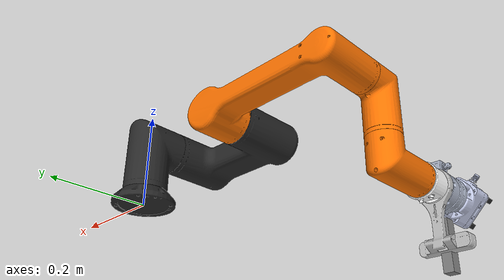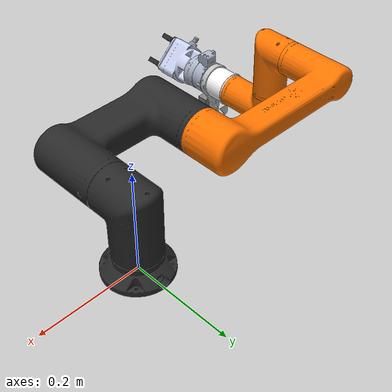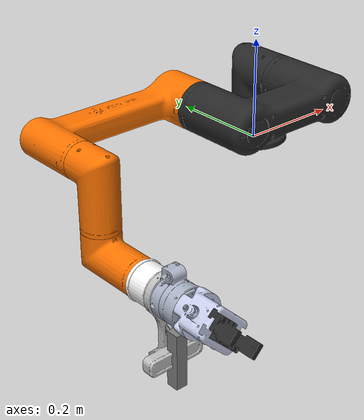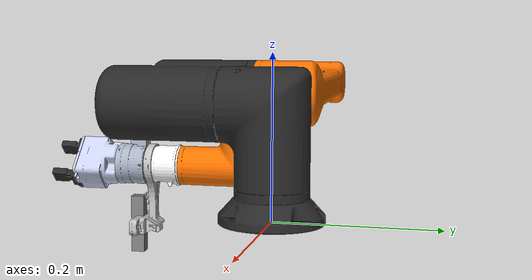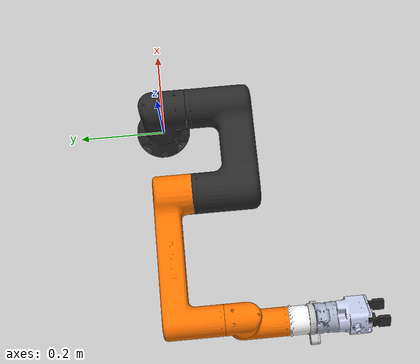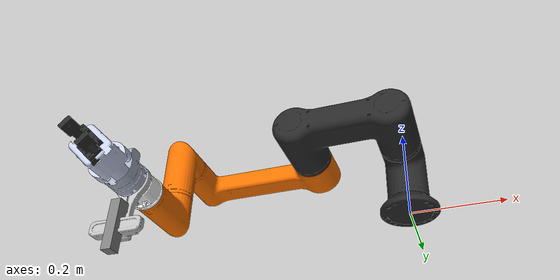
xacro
<?xml version="1.0"?>
<robot name="hcr3a" xmlns:xacro="http://www.ros.org/wiki/xacro">
  <!-- sim_mode: "mock"  -> mock_components/GenericSystem (MoveIt demo, no physics)
                 "gazebo" -> ign_ros2_control/IgnitionSystem (Gazebo Fortress) -->
  <xacro:arg name="sim_mode" default="mock"/>
  <xacro:arg name="controllers_file" default=""/>
  <xacro:arg name="initial_positions_file" default="$(find hcr3a_description)/config/initial_positions.yaml"/>

  <xacro:include filename="$(find hcr3a_description)/urdf/hcr3a_arm.xacro"/>
  <xacro:include filename="$(find hcr3a_description)/urdf/hcr3a.ros2_control.xacro"/>

  <link name="world"/>
  <joint name="world-base_link" type="fixed">
    <parent link="world"/>
    <child link="base_link"/>
    <origin xyz="0 0 0" rpy="0 0 0"/>
  </joint>

  <xacro:hcr3a_arm/>
  <xacro:hcr3a_ros2_control sim_mode="$(arg sim_mode)"
      initial_positions_file="$(arg initial_positions_file)"/>

  <xacro:if value="${'$(arg sim_mode)' == 'gazebo'}">
    <gazebo>
      <plugin filename="libign_ros2_control-system.so" name="ign_ros2_control::IgnitionROS2ControlPlugin">
        <parameters>$(arg controllers_file)</parameters>
      </plugin>
    </gazebo>
    <!-- grippy fingertip pads -->
    <gazebo reference="finger1_Link">
      <mu1>2.0</mu1>
      <mu2>2.0</mu2>
      <kp>1000000.0</kp>
      <kd>100.0</kd>
      <minDepth>0.001</minDepth>
    </gazebo>
    <gazebo reference="finger2_Link">
      <mu1>2.0</mu1>
      <mu2>2.0</mu2>
      <kp>1000000.0</kp>
      <kd>100.0</kd>
      <minDepth>0.001</minDepth>
    </gazebo>
  </xacro:if>
</robot>

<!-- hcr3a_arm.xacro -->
<robot xmlns:xacro="http://www.ros.org/wiki/xacro">
  <xacro:macro name="hcr3a_arm">
  <link name="base_link">
    <inertial>
      <origin rpy="0 0 0" xyz="7.97584139442861E-05 -0.0005270967790151 0.016153272685018" />
      <mass value="0.353281534288237" />
      <inertia ixx="0.000311825960207992" ixy="5.95993079747427E-08" ixz="7.44586976917485E-08" iyy="0.000322067229599284" iyz="-1.60524553044354E-06" izz="0.000552280538197162" />
    </inertial>
    <visual>
      <origin rpy="0 0 0" xyz="0 0 0" />
      <geometry>
        <mesh filename="package://hcr3a_description/meshes/visual/base_link.STL" />
      </geometry>
      <material name="">
        <color rgba="0.156862 0.156862 0.156862 1" />
      </material>
    </visual>
    <collision>
      <origin rpy="0 0 0" xyz="0 0 0" />
      <geometry>
        <mesh filename="package://hcr3a_description/meshes/collision/base_link.STL" />
      </geometry>
    </collision>
  </link>
  <link name="link_1">
    <inertial>
      <origin rpy="0 0 0" xyz="-0.00973376743956444 0.0753973498277641 -6.52426151931743E-08" />
      <mass value="1.07573995983057" />
      &gt;

      <inertia ixx="0.00167952991787637" ixy="0.000446312968033745" ixz="-8.8686874053242E-09" iyy="0.00138918799663758" iyz="1.25971797230156E-08" izz="0.00198146807289238" />
    </inertial>
    <visual>
      <origin rpy="0 0 0" xyz="0 0 0" />
      <geometry>
        <mesh filename="package://hcr3a_description/meshes/visual/Link_1.STL" />
      </geometry>
      <material name="">
        <color rgba="0.156862 0.156862 0.156862 1" />
      </material>
    </visual>
    <collision>
      <origin rpy="0 0 0" xyz="0 0 0" />
      <geometry>
        <mesh filename="package://hcr3a_description/meshes/collision/Link_1.STL" />
      </geometry>
    </collision>
  </link>
  <link name="link_2">
    <inertial>
      <origin rpy="0 0 0" xyz="-0.0855707798894386 0.1005 -1.08246744900953E-15" />
      <mass value="2.30109786711967" />
      <inertia ixx="0.00385493593749246" ixy="-1.82430106542393E-19" ixz="-4.01274842251468E-20" iyy="0.00346751499112964" iyz="-3.77073081813298E-09" izz="0.00522849946532153" />
    </inertial>
    <visual>
      <origin rpy="0 0 0" xyz="0 0 0" />
      <geometry>
        <mesh filename="package://hcr3a_description/meshes/visual/Link_2.STL" />
      </geometry>
      <material name="">
        <color rgba="0.156862 0.156862 0.156862 1" />
      </material>
    </visual>
    <collision>
      <origin rpy="0 0 0" xyz="0 0 0" />
      <geometry>
        <mesh filename="package://hcr3a_description/meshes/collision/Link_2.STL" />
      </geometry>
    </collision>
  </link>
  <link name="link_3">
    <inertial>
      <origin rpy="0 0 0" xyz="0.0396313745393282 0.129914382263815 -1.90387525073471E-05" />
      <mass value="1.57952178341914" />
      <inertia ixx="0.00641937210550655" ixy="-0.000194292093001292" ixz="-3.85501364092845E-07" iyy="0.00139320262270192" iyz="3.56115068980291E-07" izz="0.00680956919248161" />
    </inertial>
    <visual>
      <origin rpy="0 0 0" xyz="0 0 0" />
      <geometry>
        <mesh filename="package://hcr3a_description/meshes/visual/Link_3.STL" />
      </geometry>
      <material name="">
        <color rgba="1 0.45490196 0 1" />
      </material>
    </visual>
    <collision>
      <origin rpy="0 0 0" xyz="0 0 0" />
      <geometry>
        <mesh filename="package://hcr3a_description/meshes/collision/Link_3.STL" />
      </geometry>
    </collision>
  </link>
  <link name="link_4">
    <inertial>
      <origin rpy="0 0 0" xyz="-0.0407591947138571 0.0332665688753804 -4.68821496961702E-05" />
      <mass value="0.519192982071818" />
      <inertia ixx="0.000662849704534044" ixy="0.000118678806656831" ixz="-4.2698423653336E-08" iyy="0.000330698654885533" iyz="1.35116542532741E-07" izz="0.000701939896608463" />
    </inertial>
    <visual>
      <origin rpy="0 0 0" xyz="0 0 0" />
      <geometry>
        <mesh filename="package://hcr3a_description/meshes/visual/Link_4.STL" />
      </geometry>
      <material name="">
        <color rgba="1 0.45490196 0 1" />
      </material>
    </visual>
    <collision>
      <origin rpy="0 0 0" xyz="0 0 0" />
      <geometry>
        <mesh filename="package://hcr3a_description/meshes/collision/Link_4.STL" />
      </geometry>
    </collision>
  </link>
  <link name="link_5">
    <inertial>
      <origin rpy="0 0 0" xyz="-0.0332658773647602 0.0405153786325931 -3.79420857973267E-05" />
      <mass value="0.519192981344028" />
      <inertia ixx="0.000330699145085119" ixy="0.000118678803018896" ixz="-4.26276817861785E-07" iyy="0.000662849654535719" iyz="1.38090206017222E-07" izz="0.000701939452850313" />
    </inertial>
    <visual>
      <origin rpy="0 0 0" xyz="0 0 0" />
      <geometry>
        <mesh filename="package://hcr3a_description/meshes/visual/Link_5.STL" />
      </geometry>
      <material name="">
        <color rgba="1 0.45490196 0 1" />
      </material>
    </visual>
    <collision>
      <origin rpy="0 0 0" xyz="0 0 0" />
      <geometry>
        <mesh filename="package://hcr3a_description/meshes/collision/Link_5.STL" />
      </geometry>
    </collision>
  </link>
  <link name="link_6">
    <inertial>
      <origin rpy="0 0 0" xyz="-0.0230956246285519 -0.000703527307058902 -1.56986144597138E-05" />
      <mass value="0.161414628250816" />
      <inertia ixx="8.87742212205632E-05" ixy="-5.44402856507585E-07" ixz="2.59468601004868E-08" iyy="7.68462823592339E-05" iyz="-2.54107028048973E-08" izz="7.22408194397564E-05" />
    </inertial>
    <visual>
      <origin rpy="0 0 0" xyz="0 0 0" />
      <geometry>
        <mesh filename="package://hcr3a_description/meshes/visual/Link_6.STL" />
      </geometry>
      <material name="">
        <color rgba="1 1 1 1" />
      </material>
    </visual>
    <collision>
      <origin rpy="0 0 0" xyz="0 0 0" />
      <geometry>
        <mesh filename="package://hcr3a_description/meshes/collision/Link_6.STL" />
      </geometry>
    </collision>
  </link>
  <link name="camera_Link">
    <inertial>
      <origin rpy="0 0 0" xyz="-0.00145255788698756 0.0190207856112553 0.0394969528364233" />
      <mass value="0.115780246924644" />
      <inertia ixx="6.17861909548366E-05" ixy="3.92852944651867E-07" ixz="6.39296702646322E-08" iyy="0.000113997483951414" iyz="1.22796451131166E-06" izz="5.9098576983967E-05" />
    </inertial>
    <visual>
      <origin rpy="0 0 0" xyz="0 0 0" />
      <geometry>
        <mesh filename="package://hcr3a_description/meshes/visual/Camera_Link.STL" />
      </geometry>
      <material name="">
        <color rgba="0.752941176470588 0.752941176470588 0.752941176470588 1" />
      </material>
    </visual>
    <collision>
      <origin rpy="0 0 0" xyz="0 0 0" />
      <geometry>
        <mesh filename="package://hcr3a_description/meshes/collision/Camera_Link.STL" />
      </geometry>
    </collision>
  </link>
  <link name="forcesensor_Link">
    <inertial>
      <origin rpy="0 0 0" xyz="0.000112355555684951 0.00494375727284821 0.0198632892707566" />
      <mass value="0.145342414106485" />
      <inertia ixx="4.82306275157872E-05" ixy="1.00172687846251E-07" ixz="-1.06639561733995E-07" iyy="4.58974728669756E-05" iyz="-7.8069867418856E-07" izz="8.9584731172201E-05" />
    </inertial>
    <visual>
      <origin rpy="0 0 0" xyz="0 0 0" />
      <geometry>
        <mesh filename="package://hcr3a_description/meshes/visual/Forcesensor_Link.STL" />
      </geometry>
      <material name="">
        <color rgba="0.666666666666667 0.698039215686274 0.768627450980392 1" />
      </material>
    </visual>
    <collision>
      <origin rpy="0 0 0" xyz="0 0 0" />
      <geometry>
        <mesh filename="package://hcr3a_description/meshes/collision/Forcesensor_Link.STL" />
      </geometry>
    </collision>
  </link>
  <link name="effector_Link">
    <inertial>
      <origin rpy="0 0 0" xyz="9.44126766155851E-07 -0.0946618161679736 -0.0020058691232237" />
      <mass value="0.0864098631345287" />
      <inertia ixx="3.28181582474326E-05" ixy="4.52728015181997E-12" ixz="-2.87262001329397E-11" iyy="5.6517590339559E-05" iyz="-9.74898143950684E-09" izz="3.28212657907739E-05" />
    </inertial>
    <visual>
      <origin rpy="0 0 0" xyz="0 0 0" />
      <geometry>
        <mesh filename="package://hcr3a_description/meshes/visual/Effector_Link.STL" />
      </geometry>
      <material name="">
        <color rgba="0.792156862745098 0.819607843137255 0.933333333333333 1" />
      </material>
    </visual>
    <collision>
      <origin rpy="0 0 0" xyz="0 0 0" />
      <geometry>
        <mesh filename="package://hcr3a_description/meshes/collision/Effector_Link.STL" />
      </geometry>
    </collision>
  </link>
  <link name="finger1_Link">
    <inertial>
      <origin rpy="0 0 0" xyz="-0.005591832780106 0.0123671607518947 -0.0226798061503552" />
      <mass value="0.0168276037516424" />
      <inertia ixx="3.34661264471269E-06" ixy="-1.43148971336319E-09" ixz="2.0551380109645E-07" iyy="2.37045180144871E-06" iyz="-4.49477747173004E-08" izz="2.34087918164319E-06" />
    </inertial>
    <visual>
      <origin rpy="0 0 0" xyz="0 0 0" />
      <geometry>
        <mesh filename="package://hcr3a_description/meshes/visual/Finger1_Link.STL" />
      </geometry>
      <material name="">
        <color rgba="0.156862 0.156862 0.156862 1" />
      </material>
    </visual>
    <collision name="finger1_Link_pad">
      <origin xyz="-0.00011 0.01806 -0.03831" rpy="0 0 0" />
      <geometry>
        <box size="0.025 0.01 0.03" />
      </geometry>
    </collision>
  </link>
  <link name="finger2_Link">
    <inertial>
      <origin rpy="0 0 0" xyz="0.00559183278007369 -0.0123998933272176 -0.0226798061503521" />
      <mass value="0.016827603751646" />
      <inertia ixx="3.34661264471272E-06" ixy="-1.43148971334095E-09" ixz="-2.05513801096511E-07" iyy="2.37045180144899E-06" iyz="4.49477747173021E-08" izz="2.34087918164347E-06" />
    </inertial>
    <visual>
      <origin rpy="0 0 0" xyz="0 0 0" />
      <geometry>
        <mesh filename="package://hcr3a_description/meshes/visual/Finger2_Link.STL" />
      </geometry>
      <material name="">
        <color rgba="0.156862 0.156862 0.156862 1" />
      </material>
    </visual>
    <collision name="finger2_Link_pad">
      <origin xyz="0.00043 -0.01837 -0.03836" rpy="0 0 0" />
      <geometry>
        <box size="0.025 0.01 0.03" />
      </geometry>
    </collision>
  </link>
  <joint name="joint_1" type="revolute">
    <origin rpy="1.5708 0 1.5708" xyz="0 0 0.03769" />
    <parent link="base_link" />
    <child link="link_1" />
    <axis xyz="0 1 0" />
    <limit effort="150.0" lower="-6.2832" upper="6.2832" velocity="3.1416" />
    <dynamics damping="0" friction="0" />
  </joint>
  <joint name="joint_2" type="revolute">
    <origin rpy="-1.5708 0 0" xyz="-0.06 0.10091 0" />
    <parent link="link_1" />
    <child link="link_2" />
    <axis xyz="-1 0 0" />
    <limit effort="150.0" lower="-6.2832" upper="6.2832" velocity="3.1416" />
    <dynamics damping="0" friction="0" />
  </joint>
  <joint name="joint_3" type="revolute">
    <origin rpy="0 0 0" xyz="0 0.201 0" />
    <parent link="link_2" />
    <child link="link_3" />
    <axis xyz="-1 0 0" />
    <limit effort="150.0" lower="-2.7925" upper="2.7925" velocity="3.1416" />
    <dynamics damping="0" friction="0" />
  </joint>
  <joint name="joint_4" type="revolute">
    <origin rpy="-1.5708 0 0" xyz="-0.043643 0.2815 -0.00013246" />
    <parent link="link_3" />
    <child link="link_4" />
    <axis xyz="-1 0 0" />
    <limit effort="150.0" lower="-6.2832" upper="6.2832" velocity="6.2832" />
    <dynamics damping="0" friction="0" />
  </joint>
  <joint name="joint_5" type="revolute">
    <origin rpy="0 0 0" xyz="-0.044744 0.103 0" />
    <parent link="link_4" />
    <child link="link_5" />
    <axis xyz="0 1 0" />
    <limit effort="150.0" lower="-6.2832" upper="6.2832" velocity="6.2832" />
    <dynamics damping="0" friction="0" />
  </joint>
  <joint name="joint_6" type="revolute">
    <origin rpy="0 0 0" xyz="-0.10284 0.0445 -0.00011784" />
    <parent link="link_5" />
    <child link="link_6" />
    <axis xyz="-1 0 0" />
    <limit effort="150.0" lower="-3.146" upper="3.146" velocity="6.2832" />
    <dynamics damping="0" friction="0" />
  </joint>
  <joint name="camera" type="fixed">
    <origin rpy="2.939 1.5651 1.3693" xyz="-0.078661 0.105 -0.00053185" />
    <parent link="link_6" />
    <child link="camera_Link" />
    <axis xyz="0 0 0" />
  </joint>
  fixed

  <joint name="forcesensor" type="fixed">
    <origin rpy="1.5708 0 0" xyz="-0.0010308 0.01738 0.10501" />
    <parent link="camera_Link" />
    <child link="forcesensor_Link" />
    <axis xyz="1 0 0" />
    <limit effort="5000.0" lower="-0.0" upper="0.0" velocity="0.01" />
    <dynamics damping="0" friction="0" />
  </joint>
  <joint name="gripper" type="fixed">
    <origin rpy="1.5716 -0.00082179 0.79973" xyz="0.001393 -0.0015347 0.158" />
    <parent link="forcesensor_Link" />
    <child link="effector_Link" />
    <axis xyz="0 0 0" />
  </joint>
  <joint name="finger1" type="prismatic">
    <origin rpy="-1.5708 0 -3.1416" xyz="0 -0.0435 -0.014559" />
    <parent link="effector_Link" />
    <child link="finger1_Link" />
    <axis xyz="0 -1 0" />
    <limit effort="20.0" lower="-0.025" upper="0.03" velocity="0.1" />
    <dynamics damping="0" friction="0" />
  </joint>
  <joint name="finger2" type="prismatic">
    <origin rpy="-1.5708 0 -3.1416" xyz="0 -0.0435 0.01" />
    <parent link="effector_Link" />
    <child link="finger2_Link" />
    <axis xyz="0 -1 0" />
    <limit effort="20.0" lower="-0.03" upper="0.025" velocity="0.1" />
    <dynamics damping="0" friction="0" />
  </joint>
  <link name="flange" />
  <joint name="link_6-flange" type="fixed">
    <origin rpy="0 0 0" xyz="0 0 0" />
    <parent link="link_6" />
    <child link="flange" />
  </joint>
  <link name="tool0" />
  <joint name="effector_Link-tool0" type="fixed">
    <origin rpy="0 0 0" xyz="0 0 0" />
    <parent link="effector_Link" />
    <child link="tool0" />
  </joint>
  <material name="aluminum">
    <color rgba="0.5 0.5 0.5 1" />
  </material>
  <material name="plastic">
    <color rgba="0.1 0.1 0.1 1" />
  </material>
  <joint name="camera_joint" type="fixed">
    <origin rpy="3.141592653589793 0 -1.5707963267948966" xyz="0 0.0095 0.011" />
    <parent link="camera_Link" />
    <child link="camera_bottom_screw_frame" />
  </joint>
  <link name="camera_bottom_screw_frame" />
  <joint name="camera_link_joint" type="fixed">
    <origin rpy="0 0 0" xyz="0 0.02 0.0115" />
    <parent link="camera_bottom_screw_frame" />
    <child link="camera_link" />
  </joint>
  <link name="camera_link">
    <visual>
      <origin rpy="1.5707963267948966 0 1.5707963267948966" xyz="0.00987 -0.02 0" />
      <geometry>
        <box size="0.02005 0.099 0.023" />
      </geometry>
      <material name="aluminum" />
    </visual>
    <collision>
      <origin rpy="0 0 0" xyz="0 -0.02 0" />
      <geometry>
        <box size="0.02005 0.099 0.023" />
      </geometry>
    </collision>
    <inertial>
      <mass value="0.072" />
      <origin xyz="0 0 0" />
      <inertia ixx="0.003881243" ixy="0.0" ixz="0.0" iyy="0.000498940" iyz="0.0" izz="0.003879257" />
    </inertial>
  </link>

  <link name="tcp"/>
  <joint name="link_6-tcp" type="fixed">
    <origin xyz="-0.214 0 0" rpy="-1.5707963 0.7853982 1.5707963"/>
    <parent link="link_6"/>
    <child link="tcp"/>
  </joint>
  </xacro:macro>
</robot>
